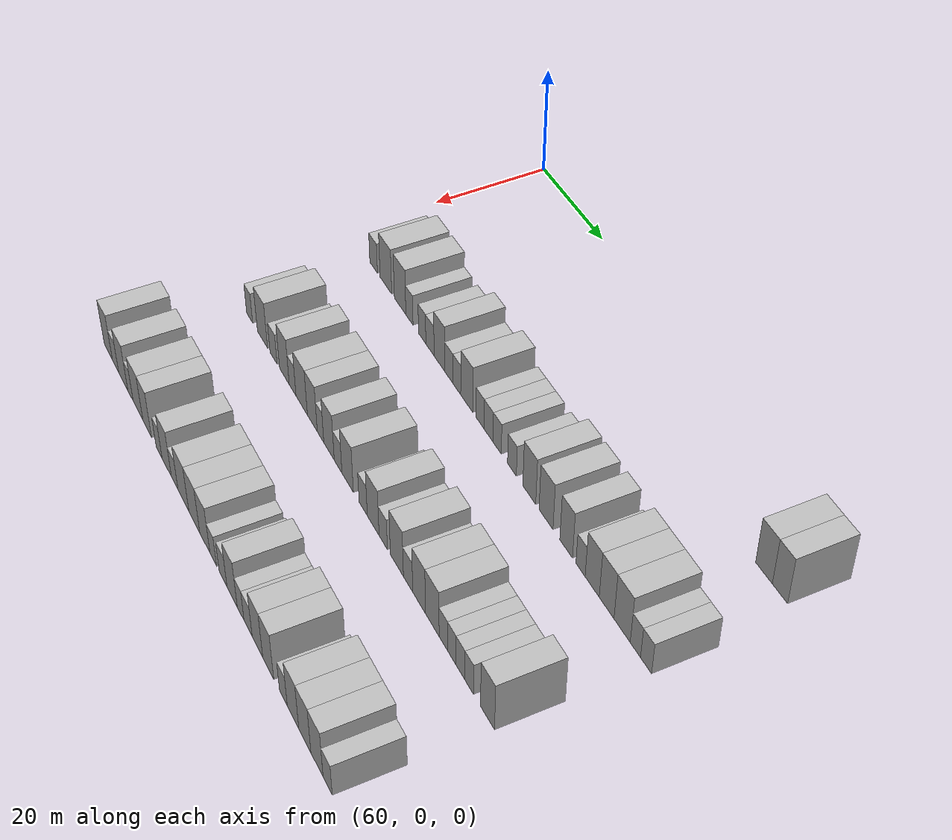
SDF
<sdf version="1.6">
 <world name="default">
  <model name="building_511">
   <static>1</static>
   <pose>69.0000 90.6162 0 0.000000 0.000000 0.000000</pose>
   <link name="link">
    <pose>0 0 4.50 0 0 0</pose>
    <collision name="collision"><geometry><box><size>10.0000 4.1742 9.0000</size></box></geometry></collision>
    <visual name="visual">
     <cast_shadows>0</cast_shadows>
     <geometry><box><size>10.0000 4.1742 9.0000</size></box></geometry>
     <material>
      <script>
       <uri>model://HANNAS_wall/materials/scripts</uri>
       <uri>model://HANNAS_wall/materials/textures</uri>
       <name>vrc/HANNAS_wall</name>
      </script>
     </material>
    </visual>
   </link>
  </model>
  <model name="building_512">
   <static>1</static>
   <pose>69.0000 94.5814 0 0.000000 0.000000 0.000000</pose>
   <link name="link">
    <pose>0 0 4.50 0 0 0</pose>
    <collision name="collision"><geometry><box><size>10.0000 3.7562 9.0000</size></box></geometry></collision>
    <visual name="visual">
     <cast_shadows>0</cast_shadows>
     <geometry><box><size>10.0000 3.7562 9.0000</size></box></geometry>
     <material>
      <script>
       <uri>model://HANNAS_wall/materials/scripts</uri>
       <uri>model://HANNAS_wall/materials/textures</uri>
       <name>vrc/HANNAS_wall</name>
      </script>
     </material>
    </visual>
   </link>
  </model>
  <model name="building_676">
   <static>1</static>
   <pose>91.0000 10.5219 0 0.000000 0.000000 0.000000</pose>
   <link name="link">
    <pose>0 0 3.00 0 0 0</pose>
    <collision name="collision"><geometry><box><size>10.0000 2.9744 6.0000</size></box></geometry></collision>
    <visual name="visual">
     <cast_shadows>0</cast_shadows>
     <geometry><box><size>10.0000 2.9744 6.0000</size></box></geometry>
     <material>
      <script>
       <uri>model://HANNAS_wall/materials/scripts</uri>
       <uri>model://HANNAS_wall/materials/textures</uri>
       <name>vrc/HANNAS_wall</name>
      </script>
     </material>
    </visual>
   </link>
  </model>
  <model name="building_677">
   <static>1</static>
   <pose>91.0000 15.2533 0 0.000000 0.000000 0.000000</pose>
   <link name="link">
    <pose>0 0 4.50 0 0 0</pose>
    <collision name="collision"><geometry><box><size>10.0000 4.4884 9.0000</size></box></geometry></collision>
    <visual name="visual">
     <cast_shadows>0</cast_shadows>
     <geometry><box><size>10.0000 4.4884 9.0000</size></box></geometry>
     <material>
      <script>
       <uri>model://HANNAS_wall/materials/scripts</uri>
       <uri>model://HANNAS_wall/materials/textures</uri>
       <name>vrc/HANNAS_wall</name>
      </script>
     </material>
    </visual>
   </link>
  </model>
  <model name="building_678">
   <static>1</static>
   <pose>91.0000 20.6483 0 0.000000 0.000000 0.000000</pose>
   <link name="link">
    <pose>0 0 4.50 0 0 0</pose>
    <collision name="collision"><geometry><box><size>10.0000 4.3017 9.0000</size></box></geometry></collision>
    <visual name="visual">
     <cast_shadows>0</cast_shadows>
     <geometry><box><size>10.0000 4.3017 9.0000</size></box></geometry>
     <material>
      <script>
       <uri>model://HANNAS_wall/materials/scripts</uri>
       <uri>model://HANNAS_wall/materials/textures</uri>
       <name>vrc/HANNAS_wall</name>
      </script>
     </material>
    </visual>
   </link>
  </model>
  <model name="building_679">
   <static>1</static>
   <pose>91.0000 24.1280 0 0.000000 0.000000 0.000000</pose>
   <link name="link">
    <pose>0 0 3.00 0 0 0</pose>
    <collision name="collision"><geometry><box><size>10.0000 2.6576 6.0000</size></box></geometry></collision>
    <visual name="visual">
     <cast_shadows>0</cast_shadows>
     <geometry><box><size>10.0000 2.6576 6.0000</size></box></geometry>
     <material>
      <script>
       <uri>model://HANNAS_wall/materials/scripts</uri>
       <uri>model://HANNAS_wall/materials/textures</uri>
       <name>vrc/HANNAS_wall</name>
      </script>
     </material>
    </visual>
   </link>
  </model>
  <model name="building_680">
   <static>1</static>
   <pose>91.0000 28.7769 0 0.000000 0.000000 0.000000</pose>
   <link name="link">
    <pose>0 0 3.00 0 0 0</pose>
    <collision name="collision"><geometry><box><size>10.0000 2.6402 6.0000</size></box></geometry></collision>
    <visual name="visual">
     <cast_shadows>0</cast_shadows>
     <geometry><box><size>10.0000 2.6402 6.0000</size></box></geometry>
     <material>
      <script>
       <uri>model://HANNAS_wall/materials/scripts</uri>
       <uri>model://HANNAS_wall/materials/textures</uri>
       <name>vrc/HANNAS_wall</name>
      </script>
     </material>
    </visual>
   </link>
  </model>
  <model name="building_681">
   <static>1</static>
   <pose>91.0000 31.5699 0 0.000000 0.000000 0.000000</pose>
   <link name="link">
    <pose>0 0 3.00 0 0 0</pose>
    <collision name="collision"><geometry><box><size>10.0000 2.9457 6.0000</size></box></geometry></collision>
    <visual name="visual">
     <cast_shadows>0</cast_shadows>
     <geometry><box><size>10.0000 2.9457 6.0000</size></box></geometry>
     <material>
      <script>
       <uri>model://HANNAS_wall/materials/scripts</uri>
       <uri>model://HANNAS_wall/materials/textures</uri>
       <name>vrc/HANNAS_wall</name>
      </script>
     </material>
    </visual>
   </link>
  </model>
  <model name="building_682">
   <static>1</static>
   <pose>91.0000 34.8905 0 0.000000 0.000000 0.000000</pose>
   <link name="link">
    <pose>0 0 4.50 0 0 0</pose>
    <collision name="collision"><geometry><box><size>10.0000 3.6954 9.0000</size></box></geometry></collision>
    <visual name="visual">
     <cast_shadows>0</cast_shadows>
     <geometry><box><size>10.0000 3.6954 9.0000</size></box></geometry>
     <material>
      <script>
       <uri>model://HANNAS_wall/materials/scripts</uri>
       <uri>model://HANNAS_wall/materials/textures</uri>
       <name>vrc/HANNAS_wall</name>
      </script>
     </material>
    </visual>
   </link>
  </model>
  <model name="building_683">
   <static>1</static>
   <pose>91.0000 38.1795 0 0.000000 0.000000 0.000000</pose>
   <link name="link">
    <pose>0 0 3.00 0 0 0</pose>
    <collision name="collision"><geometry><box><size>10.0000 2.8827 6.0000</size></box></geometry></collision>
    <visual name="visual">
     <cast_shadows>0</cast_shadows>
     <geometry><box><size>10.0000 2.8827 6.0000</size></box></geometry>
     <material>
      <script>
       <uri>model://HANNAS_wall/materials/scripts</uri>
       <uri>model://HANNAS_wall/materials/textures</uri>
       <name>vrc/HANNAS_wall</name>
      </script>
     </material>
    </visual>
   </link>
  </model>
  <model name="building_684">
   <static>1</static>
   <pose>91.0000 40.9494 0 0.000000 0.000000 0.000000</pose>
   <link name="link">
    <pose>0 0 3.00 0 0 0</pose>
    <collision name="collision"><geometry><box><size>10.0000 2.6571 6.0000</size></box></geometry></collision>
    <visual name="visual">
     <cast_shadows>0</cast_shadows>
     <geometry><box><size>10.0000 2.6571 6.0000</size></box></geometry>
     <material>
      <script>
       <uri>model://HANNAS_wall/materials/scripts</uri>
       <uri>model://HANNAS_wall/materials/textures</uri>
       <name>vrc/HANNAS_wall</name>
      </script>
     </material>
    </visual>
   </link>
  </model>
  <model name="building_685">
   <static>1</static>
   <pose>91.0000 44.3014 0 0.000000 0.000000 0.000000</pose>
   <link name="link">
    <pose>0 0 4.50 0 0 0</pose>
    <collision name="collision"><geometry><box><size>10.0000 4.0469 9.0000</size></box></geometry></collision>
    <visual name="visual">
     <cast_shadows>0</cast_shadows>
     <geometry><box><size>10.0000 4.0469 9.0000</size></box></geometry>
     <material>
      <script>
       <uri>model://HANNAS_wall/materials/scripts</uri>
       <uri>model://HANNAS_wall/materials/textures</uri>
       <name>vrc/HANNAS_wall</name>
      </script>
     </material>
    </visual>
   </link>
  </model>
  <model name="building_686">
   <static>1</static>
   <pose>91.0000 48.6646 0 0.000000 0.000000 0.000000</pose>
   <link name="link">
    <pose>0 0 3.00 0 0 0</pose>
    <collision name="collision"><geometry><box><size>10.0000 2.6795 6.0000</size></box></geometry></collision>
    <visual name="visual">
     <cast_shadows>0</cast_shadows>
     <geometry><box><size>10.0000 2.6795 6.0000</size></box></geometry>
     <material>
      <script>
       <uri>model://HANNAS_wall/materials/scripts</uri>
       <uri>model://HANNAS_wall/materials/textures</uri>
       <name>vrc/HANNAS_wall</name>
      </script>
     </material>
    </visual>
   </link>
  </model>
  <model name="building_687">
   <static>1</static>
   <pose>91.0000 51.4858 0 0.000000 0.000000 0.000000</pose>
   <link name="link">
    <pose>0 0 3.00 0 0 0</pose>
    <collision name="collision"><geometry><box><size>10.0000 2.9630 6.0000</size></box></geometry></collision>
    <visual name="visual">
     <cast_shadows>0</cast_shadows>
     <geometry><box><size>10.0000 2.9630 6.0000</size></box></geometry>
     <material>
      <script>
       <uri>model://HANNAS_wall/materials/scripts</uri>
       <uri>model://HANNAS_wall/materials/textures</uri>
       <name>vrc/HANNAS_wall</name>
      </script>
     </material>
    </visual>
   </link>
  </model>
  <model name="building_688">
   <static>1</static>
   <pose>91.0000 54.2964 0 0.000000 0.000000 0.000000</pose>
   <link name="link">
    <pose>0 0 3.00 0 0 0</pose>
    <collision name="collision"><geometry><box><size>10.0000 2.6582 6.0000</size></box></geometry></collision>
    <visual name="visual">
     <cast_shadows>0</cast_shadows>
     <geometry><box><size>10.0000 2.6582 6.0000</size></box></geometry>
     <material>
      <script>
       <uri>model://HANNAS_wall/materials/scripts</uri>
       <uri>model://HANNAS_wall/materials/textures</uri>
       <name>vrc/HANNAS_wall</name>
      </script>
     </material>
    </visual>
   </link>
  </model>
  <model name="building_689">
   <static>1</static>
   <pose>91.0000 59.0092 0 0.000000 0.000000 0.000000</pose>
   <link name="link">
    <pose>0 0 3.00 0 0 0</pose>
    <collision name="collision"><geometry><box><size>10.0000 2.7672 6.0000</size></box></geometry></collision>
    <visual name="visual">
     <cast_shadows>0</cast_shadows>
     <geometry><box><size>10.0000 2.7672 6.0000</size></box></geometry>
     <material>
      <script>
       <uri>model://HANNAS_wall/materials/scripts</uri>
       <uri>model://HANNAS_wall/materials/textures</uri>
       <name>vrc/HANNAS_wall</name>
      </script>
     </material>
    </visual>
   </link>
  </model>
  <model name="building_690">
   <static>1</static>
   <pose>91.0000 64.3683 0 0.000000 0.000000 0.000000</pose>
   <link name="link">
    <pose>0 0 4.50 0 0 0</pose>
    <collision name="collision"><geometry><box><size>10.0000 3.9511 9.0000</size></box></geometry></collision>
    <visual name="visual">
     <cast_shadows>0</cast_shadows>
     <geometry><box><size>10.0000 3.9511 9.0000</size></box></geometry>
     <material>
      <script>
       <uri>model://HANNAS_wall/materials/scripts</uri>
       <uri>model://HANNAS_wall/materials/textures</uri>
       <name>vrc/HANNAS_wall</name>
      </script>
     </material>
    </visual>
   </link>
  </model>
  <model name="building_691">
   <static>1</static>
   <pose>91.0000 69.4255 0 0.000000 0.000000 0.000000</pose>
   <link name="link">
    <pose>0 0 4.50 0 0 0</pose>
    <collision name="collision"><geometry><box><size>10.0000 4.1632 9.0000</size></box></geometry></collision>
    <visual name="visual">
     <cast_shadows>0</cast_shadows>
     <geometry><box><size>10.0000 4.1632 9.0000</size></box></geometry>
     <material>
      <script>
       <uri>model://HANNAS_wall/materials/scripts</uri>
       <uri>model://HANNAS_wall/materials/textures</uri>
       <name>vrc/HANNAS_wall</name>
      </script>
     </material>
    </visual>
   </link>
  </model>
  <model name="building_692">
   <static>1</static>
   <pose>91.0000 75.3427 0 0.000000 0.000000 0.000000</pose>
   <link name="link">
    <pose>0 0 4.50 0 0 0</pose>
    <collision name="collision"><geometry><box><size>10.0000 3.6711 9.0000</size></box></geometry></collision>
    <visual name="visual">
     <cast_shadows>0</cast_shadows>
     <geometry><box><size>10.0000 3.6711 9.0000</size></box></geometry>
     <material>
      <script>
       <uri>model://HANNAS_wall/materials/scripts</uri>
       <uri>model://HANNAS_wall/materials/textures</uri>
       <name>vrc/HANNAS_wall</name>
      </script>
     </material>
    </visual>
   </link>
  </model>
  <model name="building_693">
   <static>1</static>
   <pose>91.0000 79.4785 0 0.000000 0.000000 0.000000</pose>
   <link name="link">
    <pose>0 0 3.00 0 0 0</pose>
    <collision name="collision"><geometry><box><size>10.0000 2.6005 6.0000</size></box></geometry></collision>
    <visual name="visual">
     <cast_shadows>0</cast_shadows>
     <geometry><box><size>10.0000 2.6005 6.0000</size></box></geometry>
     <material>
      <script>
       <uri>model://HANNAS_wall/materials/scripts</uri>
       <uri>model://HANNAS_wall/materials/textures</uri>
       <name>vrc/HANNAS_wall</name>
      </script>
     </material>
    </visual>
   </link>
  </model>
  <model name="building_694">
   <static>1</static>
   <pose>91.0000 82.7428 0 0.000000 0.000000 0.000000</pose>
   <link name="link">
    <pose>0 0 4.50 0 0 0</pose>
    <collision name="collision"><geometry><box><size>10.0000 3.9283 9.0000</size></box></geometry></collision>
    <visual name="visual">
     <cast_shadows>0</cast_shadows>
     <geometry><box><size>10.0000 3.9283 9.0000</size></box></geometry>
     <material>
      <script>
       <uri>model://HANNAS_wall/materials/scripts</uri>
       <uri>model://HANNAS_wall/materials/textures</uri>
       <name>vrc/HANNAS_wall</name>
      </script>
     </material>
    </visual>
   </link>
  </model>
  <model name="building_695">
   <static>1</static>
   <pose>91.0000 86.7247 0 0.000000 0.000000 0.000000</pose>
   <link name="link">
    <pose>0 0 4.50 0 0 0</pose>
    <collision name="collision"><geometry><box><size>10.0000 4.0354 9.0000</size></box></geometry></collision>
    <visual name="visual">
     <cast_shadows>0</cast_shadows>
     <geometry><box><size>10.0000 4.0354 9.0000</size></box></geometry>
     <material>
      <script>
       <uri>model://HANNAS_wall/materials/scripts</uri>
       <uri>model://HANNAS_wall/materials/textures</uri>
       <name>vrc/HANNAS_wall</name>
      </script>
     </material>
    </visual>
   </link>
  </model>
  <model name="building_696">
   <static>1</static>
   <pose>91.0000 90.9111 0 0.000000 0.000000 0.000000</pose>
   <link name="link">
    <pose>0 0 4.50 0 0 0</pose>
    <collision name="collision"><geometry><box><size>10.0000 4.3374 9.0000</size></box></geometry></collision>
    <visual name="visual">
     <cast_shadows>0</cast_shadows>
     <geometry><box><size>10.0000 4.3374 9.0000</size></box></geometry>
     <material>
      <script>
       <uri>model://HANNAS_wall/materials/scripts</uri>
       <uri>model://HANNAS_wall/materials/textures</uri>
       <name>vrc/HANNAS_wall</name>
      </script>
     </material>
    </visual>
   </link>
  </model>
  <model name="building_697">
   <static>1</static>
   <pose>91.0000 94.4245 0 0.000000 0.000000 0.000000</pose>
   <link name="link">
    <pose>0 0 3.00 0 0 0</pose>
    <collision name="collision"><geometry><box><size>10.0000 2.6893 6.0000</size></box></geometry></collision>
    <visual name="visual">
     <cast_shadows>0</cast_shadows>
     <geometry><box><size>10.0000 2.6893 6.0000</size></box></geometry>
     <material>
      <script>
       <uri>model://HANNAS_wall/materials/scripts</uri>
       <uri>model://HANNAS_wall/materials/textures</uri>
       <name>vrc/HANNAS_wall</name>
      </script>
     </material>
    </visual>
   </link>
  </model>
  <model name="building_698">
   <static>1</static>
   <pose>91.0000 97.2066 0 0.000000 0.000000 0.000000</pose>
   <link name="link">
    <pose>0 0 3.00 0 0 0</pose>
    <collision name="collision"><geometry><box><size>10.0000 2.8749 6.0000</size></box></geometry></collision>
    <visual name="visual">
     <cast_shadows>0</cast_shadows>
     <geometry><box><size>10.0000 2.8749 6.0000</size></box></geometry>
     <material>
      <script>
       <uri>model://HANNAS_wall/materials/scripts</uri>
       <uri>model://HANNAS_wall/materials/textures</uri>
       <name>vrc/HANNAS_wall</name>
      </script>
     </material>
    </visual>
   </link>
  </model>
  <model name="building_862">
   <static>1</static>
   <pose>113.0000 13.1432 0 0.000000 0.000000 0.000000</pose>
   <link name="link">
    <pose>0 0 3.00 0 0 0</pose>
    <collision name="collision"><geometry><box><size>10.0000 2.5514 6.0000</size></box></geometry></collision>
    <visual name="visual">
     <cast_shadows>0</cast_shadows>
     <geometry><box><size>10.0000 2.5514 6.0000</size></box></geometry>
     <material>
      <script>
       <uri>model://HANNAS_wall/materials/scripts</uri>
       <uri>model://HANNAS_wall/materials/textures</uri>
       <name>vrc/HANNAS_wall</name>
      </script>
     </material>
    </visual>
   </link>
  </model>
  <model name="building_863">
   <static>1</static>
   <pose>113.0000 18.5254 0 0.000000 0.000000 0.000000</pose>
   <link name="link">
    <pose>0 0 4.50 0 0 0</pose>
    <collision name="collision"><geometry><box><size>10.0000 4.2130 9.0000</size></box></geometry></collision>
    <visual name="visual">
     <cast_shadows>0</cast_shadows>
     <geometry><box><size>10.0000 4.2130 9.0000</size></box></geometry>
     <material>
      <script>
       <uri>model://HANNAS_wall/materials/scripts</uri>
       <uri>model://HANNAS_wall/materials/textures</uri>
       <name>vrc/HANNAS_wall</name>
      </script>
     </material>
    </visual>
   </link>
  </model>
  <model name="building_864">
   <static>1</static>
   <pose>113.0000 23.0764 0 0.000000 0.000000 0.000000</pose>
   <link name="link">
    <pose>0 0 3.00 0 0 0</pose>
    <collision name="collision"><geometry><box><size>10.0000 2.8891 6.0000</size></box></geometry></collision>
    <visual name="visual">
     <cast_shadows>0</cast_shadows>
     <geometry><box><size>10.0000 2.8891 6.0000</size></box></geometry>
     <material>
      <script>
       <uri>model://HANNAS_wall/materials/scripts</uri>
       <uri>model://HANNAS_wall/materials/textures</uri>
       <name>vrc/HANNAS_wall</name>
      </script>
     </material>
    </visual>
   </link>
  </model>
  <model name="building_865">
   <static>1</static>
   <pose>113.0000 27.4424 0 0.000000 0.000000 0.000000</pose>
   <link name="link">
    <pose>0 0 4.50 0 0 0</pose>
    <collision name="collision"><geometry><box><size>10.0000 3.8429 9.0000</size></box></geometry></collision>
    <visual name="visual">
     <cast_shadows>0</cast_shadows>
     <geometry><box><size>10.0000 3.8429 9.0000</size></box></geometry>
     <material>
      <script>
       <uri>model://HANNAS_wall/materials/scripts</uri>
       <uri>model://HANNAS_wall/materials/textures</uri>
       <name>vrc/HANNAS_wall</name>
      </script>
     </material>
    </visual>
   </link>
  </model>
  <model name="building_866">
   <static>1</static>
   <pose>113.0000 30.6924 0 0.000000 0.000000 0.000000</pose>
   <link name="link">
    <pose>0 0 3.00 0 0 0</pose>
    <collision name="collision"><geometry><box><size>10.0000 2.6570 6.0000</size></box></geometry></collision>
    <visual name="visual">
     <cast_shadows>0</cast_shadows>
     <geometry><box><size>10.0000 2.6570 6.0000</size></box></geometry>
     <material>
      <script>
       <uri>model://HANNAS_wall/materials/scripts</uri>
       <uri>model://HANNAS_wall/materials/textures</uri>
       <name>vrc/HANNAS_wall</name>
      </script>
     </material>
    </visual>
   </link>
  </model>
  <model name="building_867">
   <static>1</static>
   <pose>113.0000 34.2282 0 0.000000 0.000000 0.000000</pose>
   <link name="link">
    <pose>0 0 4.50 0 0 0</pose>
    <collision name="collision"><geometry><box><size>10.0000 4.4147 9.0000</size></box></geometry></collision>
    <visual name="visual">
     <cast_shadows>0</cast_shadows>
     <geometry><box><size>10.0000 4.4147 9.0000</size></box></geometry>
     <material>
      <script>
       <uri>model://HANNAS_wall/materials/scripts</uri>
       <uri>model://HANNAS_wall/materials/textures</uri>
       <name>vrc/HANNAS_wall</name>
      </script>
     </material>
    </visual>
   </link>
  </model>
  <model name="building_868">
   <static>1</static>
   <pose>113.0000 38.3101 0 0.000000 0.000000 0.000000</pose>
   <link name="link">
    <pose>0 0 4.50 0 0 0</pose>
    <collision name="collision"><geometry><box><size>10.0000 3.7490 9.0000</size></box></geometry></collision>
    <visual name="visual">
     <cast_shadows>0</cast_shadows>
     <geometry><box><size>10.0000 3.7490 9.0000</size></box></geometry>
     <material>
      <script>
       <uri>model://HANNAS_wall/materials/scripts</uri>
       <uri>model://HANNAS_wall/materials/textures</uri>
       <name>vrc/HANNAS_wall</name>
      </script>
     </material>
    </visual>
   </link>
  </model>
  <model name="building_869">
   <static>1</static>
   <pose>113.0000 41.3984 0 0.000000 0.000000 0.000000</pose>
   <link name="link">
    <pose>0 0 3.00 0 0 0</pose>
    <collision name="collision"><geometry><box><size>10.0000 2.4276 6.0000</size></box></geometry></collision>
    <visual name="visual">
     <cast_shadows>0</cast_shadows>
     <geometry><box><size>10.0000 2.4276 6.0000</size></box></geometry>
     <material>
      <script>
       <uri>model://HANNAS_wall/materials/scripts</uri>
       <uri>model://HANNAS_wall/materials/textures</uri>
       <name>vrc/HANNAS_wall</name>
      </script>
     </material>
    </visual>
   </link>
  </model>
  <model name="building_870">
   <static>1</static>
   <pose>113.0000 44.5394 0 0.000000 0.000000 0.000000</pose>
   <link name="link">
    <pose>0 0 4.50 0 0 0</pose>
    <collision name="collision"><geometry><box><size>10.0000 3.8544 9.0000</size></box></geometry></collision>
    <visual name="visual">
     <cast_shadows>0</cast_shadows>
     <geometry><box><size>10.0000 3.8544 9.0000</size></box></geometry>
     <material>
      <script>
       <uri>model://HANNAS_wall/materials/scripts</uri>
       <uri>model://HANNAS_wall/materials/textures</uri>
       <name>vrc/HANNAS_wall</name>
      </script>
     </material>
    </visual>
   </link>
  </model>
  <model name="building_871">
   <static>1</static>
   <pose>113.0000 47.8568 0 0.000000 0.000000 0.000000</pose>
   <link name="link">
    <pose>0 0 3.00 0 0 0</pose>
    <collision name="collision"><geometry><box><size>10.0000 2.7804 6.0000</size></box></geometry></collision>
    <visual name="visual">
     <cast_shadows>0</cast_shadows>
     <geometry><box><size>10.0000 2.7804 6.0000</size></box></geometry>
     <material>
      <script>
       <uri>model://HANNAS_wall/materials/scripts</uri>
       <uri>model://HANNAS_wall/materials/textures</uri>
       <name>vrc/HANNAS_wall</name>
      </script>
     </material>
    </visual>
   </link>
  </model>
  <model name="building_872">
   <static>1</static>
   <pose>113.0000 51.2806 0 0.000000 0.000000 0.000000</pose>
   <link name="link">
    <pose>0 0 4.50 0 0 0</pose>
    <collision name="collision"><geometry><box><size>10.0000 4.0672 9.0000</size></box></geometry></collision>
    <visual name="visual">
     <cast_shadows>0</cast_shadows>
     <geometry><box><size>10.0000 4.0672 9.0000</size></box></geometry>
     <material>
      <script>
       <uri>model://HANNAS_wall/materials/scripts</uri>
       <uri>model://HANNAS_wall/materials/textures</uri>
       <name>vrc/HANNAS_wall</name>
      </script>
     </material>
    </visual>
   </link>
  </model>
  <model name="building_873">
   <static>1</static>
   <pose>113.0000 56.7414 0 0.000000 0.000000 0.000000</pose>
   <link name="link">
    <pose>0 0 3.00 0 0 0</pose>
    <collision name="collision"><geometry><box><size>10.0000 2.8544 6.0000</size></box></geometry></collision>
    <visual name="visual">
     <cast_shadows>0</cast_shadows>
     <geometry><box><size>10.0000 2.8544 6.0000</size></box></geometry>
     <material>
      <script>
       <uri>model://HANNAS_wall/materials/scripts</uri>
       <uri>model://HANNAS_wall/materials/textures</uri>
       <name>vrc/HANNAS_wall</name>
      </script>
     </material>
    </visual>
   </link>
  </model>
  <model name="building_874">
   <static>1</static>
   <pose>113.0000 60.1820 0 0.000000 0.000000 0.000000</pose>
   <link name="link">
    <pose>0 0 4.50 0 0 0</pose>
    <collision name="collision"><geometry><box><size>10.0000 4.0268 9.0000</size></box></geometry></collision>
    <visual name="visual">
     <cast_shadows>0</cast_shadows>
     <geometry><box><size>10.0000 4.0268 9.0000</size></box></geometry>
     <material>
      <script>
       <uri>model://HANNAS_wall/materials/scripts</uri>
       <uri>model://HANNAS_wall/materials/textures</uri>
       <name>vrc/HANNAS_wall</name>
      </script>
     </material>
    </visual>
   </link>
  </model>
  <model name="building_875">
   <static>1</static>
   <pose>113.0000 63.5823 0 0.000000 0.000000 0.000000</pose>
   <link name="link">
    <pose>0 0 3.00 0 0 0</pose>
    <collision name="collision"><geometry><box><size>10.0000 2.7738 6.0000</size></box></geometry></collision>
    <visual name="visual">
     <cast_shadows>0</cast_shadows>
     <geometry><box><size>10.0000 2.7738 6.0000</size></box></geometry>
     <material>
      <script>
       <uri>model://HANNAS_wall/materials/scripts</uri>
       <uri>model://HANNAS_wall/materials/textures</uri>
       <name>vrc/HANNAS_wall</name>
      </script>
     </material>
    </visual>
   </link>
  </model>
  <model name="building_876">
   <static>1</static>
   <pose>113.0000 68.0987 0 0.000000 0.000000 0.000000</pose>
   <link name="link">
    <pose>0 0 4.50 0 0 0</pose>
    <collision name="collision"><geometry><box><size>10.0000 4.2591 9.0000</size></box></geometry></collision>
    <visual name="visual">
     <cast_shadows>0</cast_shadows>
     <geometry><box><size>10.0000 4.2591 9.0000</size></box></geometry>
     <material>
      <script>
       <uri>model://HANNAS_wall/materials/scripts</uri>
       <uri>model://HANNAS_wall/materials/textures</uri>
       <name>vrc/HANNAS_wall</name>
      </script>
     </material>
    </visual>
   </link>
  </model>
  <model name="building_877">
   <static>1</static>
   <pose>113.0000 71.7265 0 0.000000 0.000000 0.000000</pose>
   <link name="link">
    <pose>0 0 3.00 0 0 0</pose>
    <collision name="collision"><geometry><box><size>10.0000 2.9964 6.0000</size></box></geometry></collision>
    <visual name="visual">
     <cast_shadows>0</cast_shadows>
     <geometry><box><size>10.0000 2.9964 6.0000</size></box></geometry>
     <material>
      <script>
       <uri>model://HANNAS_wall/materials/scripts</uri>
       <uri>model://HANNAS_wall/materials/textures</uri>
       <name>vrc/HANNAS_wall</name>
      </script>
     </material>
    </visual>
   </link>
  </model>
  <model name="building_878">
   <static>1</static>
   <pose>113.0000 75.2385 0 0.000000 0.000000 0.000000</pose>
   <link name="link">
    <pose>0 0 4.50 0 0 0</pose>
    <collision name="collision"><geometry><box><size>10.0000 4.0276 9.0000</size></box></geometry></collision>
    <visual name="visual">
     <cast_shadows>0</cast_shadows>
     <geometry><box><size>10.0000 4.0276 9.0000</size></box></geometry>
     <material>
      <script>
       <uri>model://HANNAS_wall/materials/scripts</uri>
       <uri>model://HANNAS_wall/materials/textures</uri>
       <name>vrc/HANNAS_wall</name>
      </script>
     </material>
    </visual>
   </link>
  </model>
  <model name="building_879">
   <static>1</static>
   <pose>113.0000 79.3655 0 0.000000 0.000000 0.000000</pose>
   <link name="link">
    <pose>0 0 4.50 0 0 0</pose>
    <collision name="collision"><geometry><box><size>10.0000 4.2264 9.0000</size></box></geometry></collision>
    <visual name="visual">
     <cast_shadows>0</cast_shadows>
     <geometry><box><size>10.0000 4.2264 9.0000</size></box></geometry>
     <material>
      <script>
       <uri>model://HANNAS_wall/materials/scripts</uri>
       <uri>model://HANNAS_wall/materials/textures</uri>
       <name>vrc/HANNAS_wall</name>
      </script>
     </material>
    </visual>
   </link>
  </model>
  <model name="building_880">
   <static>1</static>
   <pose>113.0000 82.7689 0 0.000000 0.000000 0.000000</pose>
   <link name="link">
    <pose>0 0 3.00 0 0 0</pose>
    <collision name="collision"><geometry><box><size>10.0000 2.5803 6.0000</size></box></geometry></collision>
    <visual name="visual">
     <cast_shadows>0</cast_shadows>
     <geometry><box><size>10.0000 2.5803 6.0000</size></box></geometry>
     <material>
      <script>
       <uri>model://HANNAS_wall/materials/scripts</uri>
       <uri>model://HANNAS_wall/materials/textures</uri>
       <name>vrc/HANNAS_wall</name>
      </script>
     </material>
    </visual>
   </link>
  </model>
  <model name="building_881">
   <static>1</static>
   <pose>113.0000 85.3313 0 0.000000 0.000000 0.000000</pose>
   <link name="link">
    <pose>0 0 3.00 0 0 0</pose>
    <collision name="collision"><geometry><box><size>10.0000 2.5446 6.0000</size></box></geometry></collision>
    <visual name="visual">
     <cast_shadows>0</cast_shadows>
     <geometry><box><size>10.0000 2.5446 6.0000</size></box></geometry>
     <material>
      <script>
       <uri>model://HANNAS_wall/materials/scripts</uri>
       <uri>model://HANNAS_wall/materials/textures</uri>
       <name>vrc/HANNAS_wall</name>
      </script>
     </material>
    </visual>
   </link>
  </model>
  <model name="building_882">
   <static>1</static>
   <pose>113.0000 87.9053 0 0.000000 0.000000 0.000000</pose>
   <link name="link">
    <pose>0 0 3.00 0 0 0</pose>
    <collision name="collision"><geometry><box><size>10.0000 2.6033 6.0000</size></box></geometry></collision>
    <visual name="visual">
     <cast_shadows>0</cast_shadows>
     <geometry><box><size>10.0000 2.6033 6.0000</size></box></geometry>
     <material>
      <script>
       <uri>model://HANNAS_wall/materials/scripts</uri>
       <uri>model://HANNAS_wall/materials/textures</uri>
       <name>vrc/HANNAS_wall</name>
      </script>
     </material>
    </visual>
   </link>
  </model>
  <model name="building_883">
   <static>1</static>
   <pose>113.0000 90.4534 0 0.000000 0.000000 0.000000</pose>
   <link name="link">
    <pose>0 0 3.00 0 0 0</pose>
    <collision name="collision"><geometry><box><size>10.0000 2.4930 6.0000</size></box></geometry></collision>
    <visual name="visual">
     <cast_shadows>0</cast_shadows>
     <geometry><box><size>10.0000 2.4930 6.0000</size></box></geometry>
     <material>
      <script>
       <uri>model://HANNAS_wall/materials/scripts</uri>
       <uri>model://HANNAS_wall/materials/textures</uri>
       <name>vrc/HANNAS_wall</name>
      </script>
     </material>
    </visual>
   </link>
  </model>
  <model name="building_884">
   <static>1</static>
   <pose>113.0000 95.6953 0 0.000000 0.000000 0.000000</pose>
   <link name="link">
    <pose>0 0 4.50 0 0 0</pose>
    <collision name="collision"><geometry><box><size>10.0000 3.9907 9.0000</size></box></geometry></collision>
    <visual name="visual">
     <cast_shadows>0</cast_shadows>
     <geometry><box><size>10.0000 3.9907 9.0000</size></box></geometry>
     <material>
      <script>
       <uri>model://HANNAS_wall/materials/scripts</uri>
       <uri>model://HANNAS_wall/materials/textures</uri>
       <name>vrc/HANNAS_wall</name>
      </script>
     </material>
    </visual>
   </link>
  </model>
  <model name="building_1052">
   <static>1</static>
   <pose>135.0000 11.0899 0 0.000000 0.000000 0.000000</pose>
   <link name="link">
    <pose>0 0 4.50 0 0 0</pose>
    <collision name="collision"><geometry><box><size>10.0000 3.9093 9.0000</size></box></geometry></collision>
    <visual name="visual">
     <cast_shadows>0</cast_shadows>
     <geometry><box><size>10.0000 3.9093 9.0000</size></box></geometry>
     <material>
      <script>
       <uri>model://HANNAS_wall/materials/scripts</uri>
       <uri>model://HANNAS_wall/materials/textures</uri>
       <name>vrc/HANNAS_wall</name>
      </script>
     </material>
    </visual>
   </link>
  </model>
  <model name="building_1053">
   <static>1</static>
   <pose>135.0000 14.5314 0 0.000000 0.000000 0.000000</pose>
   <link name="link">
    <pose>0 0 3.00 0 0 0</pose>
    <collision name="collision"><geometry><box><size>10.0000 2.9737 6.0000</size></box></geometry></collision>
    <visual name="visual">
     <cast_shadows>0</cast_shadows>
     <geometry><box><size>10.0000 2.9737 6.0000</size></box></geometry>
     <material>
      <script>
       <uri>model://HANNAS_wall/materials/scripts</uri>
       <uri>model://HANNAS_wall/materials/textures</uri>
       <name>vrc/HANNAS_wall</name>
      </script>
     </material>
    </visual>
   </link>
  </model>
  <model name="building_1054">
   <static>1</static>
   <pose>135.0000 18.1509 0 0.000000 0.000000 0.000000</pose>
   <link name="link">
    <pose>0 0 4.50 0 0 0</pose>
    <collision name="collision"><geometry><box><size>10.0000 4.2652 9.0000</size></box></geometry></collision>
    <visual name="visual">
     <cast_shadows>0</cast_shadows>
     <geometry><box><size>10.0000 4.2652 9.0000</size></box></geometry>
     <material>
      <script>
       <uri>model://HANNAS_wall/materials/scripts</uri>
       <uri>model://HANNAS_wall/materials/textures</uri>
       <name>vrc/HANNAS_wall</name>
      </script>
     </material>
    </visual>
   </link>
  </model>
  <model name="building_1055">
   <static>1</static>
   <pose>135.0000 21.4900 0 0.000000 0.000000 0.000000</pose>
   <link name="link">
    <pose>0 0 3.00 0 0 0</pose>
    <collision name="collision"><geometry><box><size>10.0000 2.4130 6.0000</size></box></geometry></collision>
    <visual name="visual">
     <cast_shadows>0</cast_shadows>
     <geometry><box><size>10.0000 2.4130 6.0000</size></box></geometry>
     <material>
      <script>
       <uri>model://HANNAS_wall/materials/scripts</uri>
       <uri>model://HANNAS_wall/materials/textures</uri>
       <name>vrc/HANNAS_wall</name>
      </script>
     </material>
    </visual>
   </link>
  </model>
  <model name="building_1056">
   <static>1</static>
   <pose>135.0000 24.9201 0 0.000000 0.000000 0.000000</pose>
   <link name="link">
    <pose>0 0 4.50 0 0 0</pose>
    <collision name="collision"><geometry><box><size>10.0000 4.4472 9.0000</size></box></geometry></collision>
    <visual name="visual">
     <cast_shadows>0</cast_shadows>
     <geometry><box><size>10.0000 4.4472 9.0000</size></box></geometry>
     <material>
      <script>
       <uri>model://HANNAS_wall/materials/scripts</uri>
       <uri>model://HANNAS_wall/materials/textures</uri>
       <name>vrc/HANNAS_wall</name>
      </script>
     </material>
    </visual>
   </link>
  </model>
  <model name="building_1057">
   <static>1</static>
   <pose>135.0000 29.0405 0 0.000000 0.000000 0.000000</pose>
   <link name="link">
    <pose>0 0 4.50 0 0 0</pose>
    <collision name="collision"><geometry><box><size>10.0000 3.7936 9.0000</size></box></geometry></collision>
    <visual name="visual">
     <cast_shadows>0</cast_shadows>
     <geometry><box><size>10.0000 3.7936 9.0000</size></box></geometry>
     <material>
      <script>
       <uri>model://HANNAS_wall/materials/scripts</uri>
       <uri>model://HANNAS_wall/materials/textures</uri>
       <name>vrc/HANNAS_wall</name>
      </script>
     </material>
    </visual>
   </link>
  </model>
  <model name="building_1058">
   <static>1</static>
   <pose>135.0000 34.2326 0 0.000000 0.000000 0.000000</pose>
   <link name="link">
    <pose>0 0 3.00 0 0 0</pose>
    <collision name="collision"><geometry><box><size>10.0000 2.5907 6.0000</size></box></geometry></collision>
    <visual name="visual">
     <cast_shadows>0</cast_shadows>
     <geometry><box><size>10.0000 2.5907 6.0000</size></box></geometry>
     <material>
      <script>
       <uri>model://HANNAS_wall/materials/scripts</uri>
       <uri>model://HANNAS_wall/materials/textures</uri>
       <name>vrc/HANNAS_wall</name>
      </script>
     </material>
    </visual>
   </link>
  </model>
  <model name="building_1059">
   <static>1</static>
   <pose>135.0000 37.5266 0 0.000000 0.000000 0.000000</pose>
   <link name="link">
    <pose>0 0 4.50 0 0 0</pose>
    <collision name="collision"><geometry><box><size>10.0000 3.9972 9.0000</size></box></geometry></collision>
    <visual name="visual">
     <cast_shadows>0</cast_shadows>
     <geometry><box><size>10.0000 3.9972 9.0000</size></box></geometry>
     <material>
      <script>
       <uri>model://HANNAS_wall/materials/scripts</uri>
       <uri>model://HANNAS_wall/materials/textures</uri>
       <name>vrc/HANNAS_wall</name>
      </script>
     </material>
    </visual>
   </link>
  </model>
  <model name="building_1060">
   <static>1</static>
   <pose>135.0000 40.9160 0 0.000000 0.000000 0.000000</pose>
   <link name="link">
    <pose>0 0 3.00 0 0 0</pose>
    <collision name="collision"><geometry><box><size>10.0000 2.7815 6.0000</size></box></geometry></collision>
    <visual name="visual">
     <cast_shadows>0</cast_shadows>
     <geometry><box><size>10.0000 2.7815 6.0000</size></box></geometry>
     <material>
      <script>
       <uri>model://HANNAS_wall/materials/scripts</uri>
       <uri>model://HANNAS_wall/materials/textures</uri>
       <name>vrc/HANNAS_wall</name>
      </script>
     </material>
    </visual>
   </link>
  </model>
  <model name="building_1061">
   <static>1</static>
   <pose>135.0000 44.5308 0 0.000000 0.000000 0.000000</pose>
   <link name="link">
    <pose>0 0 4.50 0 0 0</pose>
    <collision name="collision"><geometry><box><size>10.0000 4.4482 9.0000</size></box></geometry></collision>
    <visual name="visual">
     <cast_shadows>0</cast_shadows>
     <geometry><box><size>10.0000 4.4482 9.0000</size></box></geometry>
     <material>
      <script>
       <uri>model://HANNAS_wall/materials/scripts</uri>
       <uri>model://HANNAS_wall/materials/textures</uri>
       <name>vrc/HANNAS_wall</name>
      </script>
     </material>
    </visual>
   </link>
  </model>
  <model name="building_1062">
   <static>1</static>
   <pose>135.0000 48.9531 0 0.000000 0.000000 0.000000</pose>
   <link name="link">
    <pose>0 0 4.50 0 0 0</pose>
    <collision name="collision"><geometry><box><size>10.0000 4.3963 9.0000</size></box></geometry></collision>
    <visual name="visual">
     <cast_shadows>0</cast_shadows>
     <geometry><box><size>10.0000 4.3963 9.0000</size></box></geometry>
     <material>
      <script>
       <uri>model://HANNAS_wall/materials/scripts</uri>
       <uri>model://HANNAS_wall/materials/textures</uri>
       <name>vrc/HANNAS_wall</name>
      </script>
     </material>
    </visual>
   </link>
  </model>
  <model name="building_1063">
   <static>1</static>
   <pose>135.0000 53.1522 0 0.000000 0.000000 0.000000</pose>
   <link name="link">
    <pose>0 0 4.50 0 0 0</pose>
    <collision name="collision"><geometry><box><size>10.0000 4.0020 9.0000</size></box></geometry></collision>
    <visual name="visual">
     <cast_shadows>0</cast_shadows>
     <geometry><box><size>10.0000 4.0020 9.0000</size></box></geometry>
     <material>
      <script>
       <uri>model://HANNAS_wall/materials/scripts</uri>
       <uri>model://HANNAS_wall/materials/textures</uri>
       <name>vrc/HANNAS_wall</name>
      </script>
     </material>
    </visual>
   </link>
  </model>
  <model name="building_1064">
   <static>1</static>
   <pose>135.0000 56.4503 0 0.000000 0.000000 0.000000</pose>
   <link name="link">
    <pose>0 0 3.00 0 0 0</pose>
    <collision name="collision"><geometry><box><size>10.0000 2.5942 6.0000</size></box></geometry></collision>
    <visual name="visual">
     <cast_shadows>0</cast_shadows>
     <geometry><box><size>10.0000 2.5942 6.0000</size></box></geometry>
     <material>
      <script>
       <uri>model://HANNAS_wall/materials/scripts</uri>
       <uri>model://HANNAS_wall/materials/textures</uri>
       <name>vrc/HANNAS_wall</name>
      </script>
     </material>
    </visual>
   </link>
  </model>
  <model name="building_1065">
   <static>1</static>
   <pose>135.0000 60.2260 0 0.000000 0.000000 0.000000</pose>
   <link name="link">
    <pose>0 0 3.00 0 0 0</pose>
    <collision name="collision"><geometry><box><size>10.0000 2.9572 6.0000</size></box></geometry></collision>
    <visual name="visual">
     <cast_shadows>0</cast_shadows>
     <geometry><box><size>10.0000 2.9572 6.0000</size></box></geometry>
     <material>
      <script>
       <uri>model://HANNAS_wall/materials/scripts</uri>
       <uri>model://HANNAS_wall/materials/textures</uri>
       <name>vrc/HANNAS_wall</name>
      </script>
     </material>
    </visual>
   </link>
  </model>
  <model name="building_1066">
   <static>1</static>
   <pose>135.0000 63.6214 0 0.000000 0.000000 0.000000</pose>
   <link name="link">
    <pose>0 0 4.50 0 0 0</pose>
    <collision name="collision"><geometry><box><size>10.0000 3.8337 9.0000</size></box></geometry></collision>
    <visual name="visual">
     <cast_shadows>0</cast_shadows>
     <geometry><box><size>10.0000 3.8337 9.0000</size></box></geometry>
     <material>
      <script>
       <uri>model://HANNAS_wall/materials/scripts</uri>
       <uri>model://HANNAS_wall/materials/textures</uri>
       <name>vrc/HANNAS_wall</name>
      </script>
     </material>
    </visual>
   </link>
  </model>
  <model name="building_1067">
   <static>1</static>
   <pose>135.0000 66.7749 0 0.000000 0.000000 0.000000</pose>
   <link name="link">
    <pose>0 0 3.00 0 0 0</pose>
    <collision name="collision"><geometry><box><size>10.0000 2.4732 6.0000</size></box></geometry></collision>
    <visual name="visual">
     <cast_shadows>0</cast_shadows>
     <geometry><box><size>10.0000 2.4732 6.0000</size></box></geometry>
     <material>
      <script>
       <uri>model://HANNAS_wall/materials/scripts</uri>
       <uri>model://HANNAS_wall/materials/textures</uri>
       <name>vrc/HANNAS_wall</name>
      </script>
     </material>
    </visual>
   </link>
  </model>
  <model name="building_1068">
   <static>1</static>
   <pose>135.0000 69.5018 0 0.000000 0.000000 0.000000</pose>
   <link name="link">
    <pose>0 0 3.00 0 0 0</pose>
    <collision name="collision"><geometry><box><size>10.0000 2.9807 6.0000</size></box></geometry></collision>
    <visual name="visual">
     <cast_shadows>0</cast_shadows>
     <geometry><box><size>10.0000 2.9807 6.0000</size></box></geometry>
     <material>
      <script>
       <uri>model://HANNAS_wall/materials/scripts</uri>
       <uri>model://HANNAS_wall/materials/textures</uri>
       <name>vrc/HANNAS_wall</name>
      </script>
     </material>
    </visual>
   </link>
  </model>
  <model name="building_1069">
   <static>1</static>
   <pose>135.0000 72.8691 0 0.000000 0.000000 0.000000</pose>
   <link name="link">
    <pose>0 0 4.50 0 0 0</pose>
    <collision name="collision"><geometry><box><size>10.0000 3.7540 9.0000</size></box></geometry></collision>
    <visual name="visual">
     <cast_shadows>0</cast_shadows>
     <geometry><box><size>10.0000 3.7540 9.0000</size></box></geometry>
     <material>
      <script>
       <uri>model://HANNAS_wall/materials/scripts</uri>
       <uri>model://HANNAS_wall/materials/textures</uri>
       <name>vrc/HANNAS_wall</name>
      </script>
     </material>
    </visual>
   </link>
  </model>
  <model name="building_1070">
   <static>1</static>
   <pose>135.0000 76.6637 0 0.000000 0.000000 0.000000</pose>
   <link name="link">
    <pose>0 0 4.50 0 0 0</pose>
    <collision name="collision"><geometry><box><size>10.0000 3.8351 9.0000</size></box></geometry></collision>
    <visual name="visual">
     <cast_shadows>0</cast_shadows>
     <geometry><box><size>10.0000 3.8351 9.0000</size></box></geometry>
     <material>
      <script>
       <uri>model://HANNAS_wall/materials/scripts</uri>
       <uri>model://HANNAS_wall/materials/textures</uri>
       <name>vrc/HANNAS_wall</name>
      </script>
     </material>
    </visual>
   </link>
  </model>
  <model name="building_1071">
   <static>1</static>
   <pose>135.0000 81.8966 0 0.000000 0.000000 0.000000</pose>
   <link name="link">
    <pose>0 0 3.00 0 0 0</pose>
    <collision name="collision"><geometry><box><size>10.0000 2.6307 6.0000</size></box></geometry></collision>
    <visual name="visual">
     <cast_shadows>0</cast_shadows>
     <geometry><box><size>10.0000 2.6307 6.0000</size></box></geometry>
     <material>
      <script>
       <uri>model://HANNAS_wall/materials/scripts</uri>
       <uri>model://HANNAS_wall/materials/textures</uri>
       <name>vrc/HANNAS_wall</name>
      </script>
     </material>
    </visual>
   </link>
  </model>
  <model name="building_1072">
   <static>1</static>
   <pose>135.0000 85.1268 0 0.000000 0.000000 0.000000</pose>
   <link name="link">
    <pose>0 0 4.50 0 0 0</pose>
    <collision name="collision"><geometry><box><size>10.0000 3.8296 9.0000</size></box></geometry></collision>
    <visual name="visual">
     <cast_shadows>0</cast_shadows>
     <geometry><box><size>10.0000 3.8296 9.0000</size></box></geometry>
     <material>
      <script>
       <uri>model://HANNAS_wall/materials/scripts</uri>
       <uri>model://HANNAS_wall/materials/textures</uri>
       <name>vrc/HANNAS_wall</name>
      </script>
     </material>
    </visual>
   </link>
  </model>
  <model name="building_1073">
   <static>1</static>
   <pose>135.0000 89.0160 0 0.000000 0.000000 0.000000</pose>
   <link name="link">
    <pose>0 0 4.50 0 0 0</pose>
    <collision name="collision"><geometry><box><size>10.0000 3.9488 9.0000</size></box></geometry></collision>
    <visual name="visual">
     <cast_shadows>0</cast_shadows>
     <geometry><box><size>10.0000 3.9488 9.0000</size></box></geometry>
     <material>
      <script>
       <uri>model://HANNAS_wall/materials/scripts</uri>
       <uri>model://HANNAS_wall/materials/textures</uri>
       <name>vrc/HANNAS_wall</name>
      </script>
     </material>
    </visual>
   </link>
  </model>
  <model name="building_1074">
   <static>1</static>
   <pose>135.0000 92.9337 0 0.000000 0.000000 0.000000</pose>
   <link name="link">
    <pose>0 0 4.50 0 0 0</pose>
    <collision name="collision"><geometry><box><size>10.0000 3.8867 9.0000</size></box></geometry></collision>
    <visual name="visual">
     <cast_shadows>0</cast_shadows>
     <geometry><box><size>10.0000 3.8867 9.0000</size></box></geometry>
     <material>
      <script>
       <uri>model://HANNAS_wall/materials/scripts</uri>
       <uri>model://HANNAS_wall/materials/textures</uri>
       <name>vrc/HANNAS_wall</name>
      </script>
     </material>
    </visual>
   </link>
  </model>
  <model name="building_1075">
   <static>1</static>
   <pose>135.0000 96.3039 0 0.000000 0.000000 0.000000</pose>
   <link name="link">
    <pose>0 0 3.00 0 0 0</pose>
    <collision name="collision"><geometry><box><size>10.0000 2.8536 6.0000</size></box></geometry></collision>
    <visual name="visual">
     <cast_shadows>0</cast_shadows>
     <geometry><box><size>10.0000 2.8536 6.0000</size></box></geometry>
     <material>
      <script>
       <uri>model://HANNAS_wall/materials/scripts</uri>
       <uri>model://HANNAS_wall/materials/textures</uri>
       <name>vrc/HANNAS_wall</name>
      </script>
     </material>
    </visual>
   </link>
  </model>
 </world>
</sdf>
